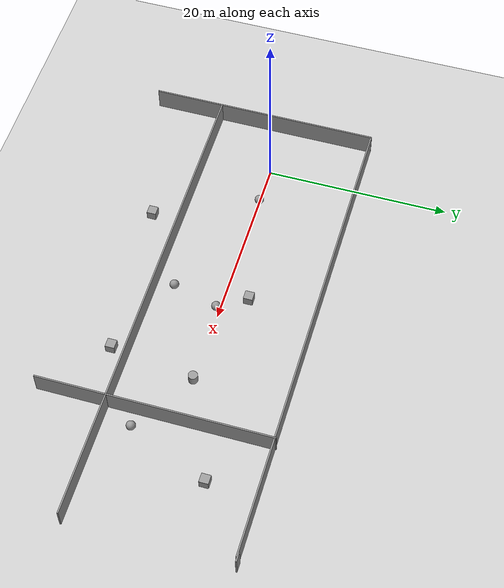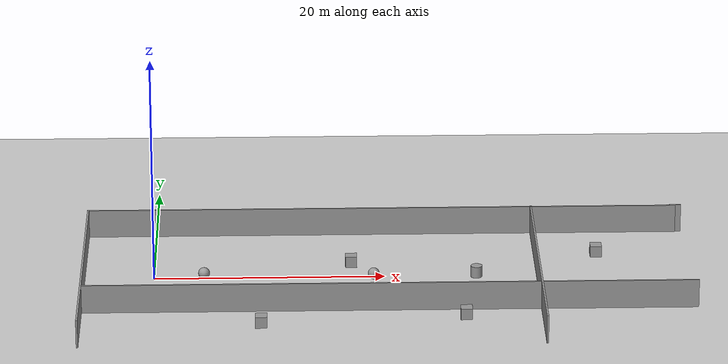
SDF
<sdf version="1.6">
 <world name="default">
  <light name="sun" type="directional">
   <pose>0 0 10 0 -0 0</pose>
   <diffuse>0.8 0.8 0.8 1</diffuse>
   <specular>0.2 0.2 0.2 1</specular>
   <attenuation>
    <range>1000</range>
    <constant>0.9</constant>
    <linear>0.01</linear>
    <quadratic>0.001</quadratic>
   </attenuation>
   <direction>-0.5 0.1 -0.9</direction>
  </light>
  <model name="ground_plane">
   <static>1</static>
   <link name="link">
    <collision name="collision">
     <geometry><plane><normal>0 0 1</normal><size>100 100</size></plane></geometry>
     <surface>
      <contact><collide_bitmask>65535</collide_bitmask></contact>
      <friction><ode><mu>100</mu><mu2>50</mu2></ode></friction>
     </surface>
    </collision>
    <visual name="visual">
     <cast_shadows>0</cast_shadows>
     <geometry><plane><normal>0 0 1</normal><size>100 100</size></plane></geometry>
     <material>
      <script><uri>file://media/materials/scripts/gazebo.material</uri><name>Gazebo/Grey</name></script>
     </material>
    </visual>
   </link>
  </model>
  <gravity>0 0 -9.8</gravity>
  <magnetic_field>6e-06 2.3e-05 -4.2e-05</magnetic_field>
  <atmosphere type="adiabatic"/>
  <physics name="default_physics" default="0" type="ode">
   <max_step_size>0.001</max_step_size>
   <real_time_factor>1</real_time_factor>
   <real_time_update_rate>1000</real_time_update_rate>
  </physics>
  <scene><ambient>0.4 0.4 0.4 1</ambient><background>0.7 0.7 0.7 1</background><shadows>1</shadows></scene>
  <spherical_coordinates>
   <surface_model>EARTH_WGS84</surface_model>
   <latitude_deg>0</latitude_deg>
   <longitude_deg>0</longitude_deg>
   <elevation>0</elevation>
   <heading_deg>0</heading_deg>
  </spherical_coordinates>
  <model name="unit_box">
   <pose>9.27103 -10.7382 0.499995 -1e-05 -0 -0</pose>
   <link name="link">
    <inertial>
     <mass>1</mass>
     <inertia>
      <ixx>0.166667</ixx>
      <ixy>0</ixy>
      <ixz>0</ixz>
      <iyy>0.166667</iyy>
      <iyz>0</iyz>
      <izz>0.166667</izz>
     </inertia>
    </inertial>
    <collision name="collision"><geometry><box><size>1 1 1</size></box></geometry></collision>
    <visual name="visual">
     <geometry><box><size>1 1 1</size></box></geometry>
     <material>
      <script><name>Gazebo/Grey</name><uri>file://media/materials/scripts/gazebo.material</uri></script>
     </material>
    </visual>
   </link>
  </model>
  <model name="unit_sphere">
   <pose>17.6211 -5.50796 0.5 0 -0 0</pose>
   <link name="link">
    <inertial>
     <mass>1</mass>
     <inertia><ixx>0.1</ixx><ixy>0</ixy><ixz>0</ixz><iyy>0.1</iyy><iyz>0</iyz><izz>0.1</izz></inertia>
    </inertial>
    <collision name="collision"><geometry><sphere><radius>0.5</radius></sphere></geometry></collision>
    <visual name="visual">
     <geometry><sphere><radius>0.5</radius></sphere></geometry>
     <material>
      <script><name>Gazebo/Grey</name><uri>file://media/materials/scripts/gazebo.material</uri></script>
     </material>
    </visual>
   </link>
  </model>
  <model name="unit_box_0">
   <pose>17.1012 2.58353 0.499995 -1e-05 -0 -0</pose>
   <link name="link">
    <inertial>
     <mass>1</mass>
     <inertia>
      <ixx>0.166667</ixx>
      <ixy>0</ixy>
      <ixz>0</ixz>
      <iyy>0.166667</iyy>
      <iyz>0</iyz>
      <izz>0.166667</izz>
     </inertia>
    </inertial>
    <collision name="collision"><geometry><box><size>1 1 1</size></box></geometry></collision>
    <visual name="visual">
     <geometry><box><size>1 1 1</size></box></geometry>
     <material>
      <script><name>Gazebo/Grey</name><uri>file://media/materials/scripts/gazebo.material</uri></script>
     </material>
    </visual>
   </link>
  </model>
  <model name="unit_box_1">
   <pose>26.6753 -9.35219 0.499995 0 1e-05 0</pose>
   <link name="link">
    <inertial>
     <mass>1</mass>
     <inertia>
      <ixx>0.166667</ixx>
      <ixy>0</ixy>
      <ixz>0</ixz>
      <iyy>0.166667</iyy>
      <iyz>0</iyz>
      <izz>0.166667</izz>
     </inertia>
    </inertial>
    <collision name="collision"><geometry><box><size>1 1 1</size></box></geometry></collision>
    <visual name="visual">
     <geometry><box><size>1 1 1</size></box></geometry>
     <material>
      <script><name>Gazebo/Grey</name><uri>file://media/materials/scripts/gazebo.material</uri></script>
     </material>
    </visual>
   </link>
  </model>
  <model name="unit_cylinder">
   <pose>27.9405 -0.11704 0.499998 3e-06 4e-06 -0</pose>
   <link name="link">
    <inertial>
     <mass>1</mass>
     <inertia><ixx>0.145833</ixx><ixy>0</ixy><ixz>0</ixz><iyy>0.145833</iyy><iyz>0</iyz><izz>0.125</izz></inertia>
    </inertial>
    <collision name="collision">
     <geometry><cylinder><radius>0.5</radius><length>1</length></cylinder></geometry>
    </collision>
    <visual name="visual">
     <geometry><cylinder><radius>0.5</radius><length>1</length></cylinder></geometry>
     <material>
      <script><name>Gazebo/Grey</name><uri>file://media/materials/scripts/gazebo.material</uri></script>
     </material>
    </visual>
   </link>
  </model>
  <model name="unit_sphere_0">
   <pose>34.8862 -4.37811 0.5 0 -0 0</pose>
   <link name="link">
    <inertial>
     <mass>1</mass>
     <inertia><ixx>0.1</ixx><ixy>0</ixy><ixz>0</ixz><iyy>0.1</iyy><iyz>0</iyz><izz>0.1</izz></inertia>
    </inertial>
    <collision name="collision"><geometry><sphere><radius>0.5</radius></sphere></geometry></collision>
    <visual name="visual">
     <geometry><sphere><radius>0.5</radius></sphere></geometry>
     <material>
      <script><name>Gazebo/Grey</name><uri>file://media/materials/scripts/gazebo.material</uri></script>
     </material>
    </visual>
   </link>
  </model>
  <model name="unit_box_2">
   <pose>38.6305 4.52883 0.499995 -1e-05 -0 -0</pose>
   <link name="link">
    <inertial>
     <mass>1</mass>
     <inertia>
      <ixx>0.166667</ixx>
      <ixy>0</ixy>
      <ixz>0</ixz>
      <iyy>0.166667</iyy>
      <iyz>0</iyz>
      <izz>0.166667</izz>
     </inertia>
    </inertial>
    <collision name="collision"><geometry><box><size>1 1 1</size></box></geometry></collision>
    <visual name="visual">
     <geometry><box><size>1 1 1</size></box></geometry>
     <material>
      <script><name>Gazebo/Grey</name><uri>file://media/materials/scripts/gazebo.material</uri></script>
     </material>
    </visual>
   </link>
  </model>
  <model name="unit_sphere_1">
   <pose>4.30811 -0.016172 0.5 0 -0 0</pose>
   <link name="link">
    <inertial>
     <mass>1</mass>
     <inertia><ixx>0.1</ixx><ixy>0</ixy><ixz>0</ixz><iyy>0.1</iyy><iyz>0</iyz><izz>0.1</izz></inertia>
    </inertial>
    <collision name="collision"><geometry><sphere><radius>0.5</radius></sphere></geometry></collision>
    <visual name="visual">
     <geometry><sphere><radius>0.5</radius></sphere></geometry>
     <material>
      <script><name>Gazebo/Grey</name><uri>file://media/materials/scripts/gazebo.material</uri></script>
     </material>
    </visual>
   </link>
  </model>
  <model name="unit_sphere_2">
   <pose>19.0068 -0.442211 0.5 0 -0 0</pose>
   <link name="link">
    <inertial>
     <mass>1</mass>
     <inertia><ixx>0.1</ixx><ixy>0</ixy><ixz>0</ixz><iyy>0.1</iyy><iyz>0</iyz><izz>0.1</izz></inertia>
    </inertial>
    <collision name="collision"><geometry><sphere><radius>0.5</radius></sphere></geometry></collision>
    <visual name="visual">
     <geometry><sphere><radius>0.5</radius></sphere></geometry>
     <material>
      <script><name>Gazebo/Grey</name><uri>file://media/materials/scripts/gazebo.material</uri></script>
     </material>
    </visual>
   </link>
  </model>
  <model name="world_two">
   <link name="Wall_10">
    <pose>13 0 0 0 -0 1.5708</pose>
    <inertial>
     <mass>1</mass>
     <inertia><ixx>1</ixx><ixy>0</ixy><ixz>0</ixz><iyy>1</iyy><iyz>0</iyz><izz>1</izz></inertia>
    </inertial>
    <visual name="Wall_10_Visual">
     <pose>0 0 1.25 0 -0 0</pose>
     <geometry><box><size>25.25 0.15 2.5</size></box></geometry>
     <material>
      <script><uri>file://media/materials/scripts/gazebo.material</uri><name>Gazebo/Grey</name></script>
      <ambient>1 1 1 1</ambient>
      <shader type="pixel"><normal_map>__default__</normal_map></shader>
      <diffuse>0.7 0.7 0.7 1</diffuse>
      <specular>0.01 0.01 0.01 1</specular>
      <emissive>0 0 0 1</emissive>
     </material>
     <meta><layer>0</layer></meta>
    </visual>
    <collision name="Wall_10_Collision">
     <pose>0 0 1.25 0 -0 0</pose>
     <geometry><box><size>25.25 0.15 2.5</size></box></geometry>
     <surface>
      <friction>
       <ode><mu>1</mu><mu2>1</mu2><fdir1>0 0 0</fdir1><slip1>0</slip1><slip2>0</slip2></ode>
       <torsional>
        <coefficient>1</coefficient>
        <patch_radius>0</patch_radius>
        <surface_radius>0</surface_radius>
        <use_patch_radius>1</use_patch_radius>
        <ode><slip>0</slip></ode>
       </torsional>
      </friction>
      <bounce><restitution_coefficient>0</restitution_coefficient><threshold>1e+06</threshold></bounce>
      <contact>
       <collide_without_contact>0</collide_without_contact>
       <collide_without_contact_bitmask>1</collide_without_contact_bitmask>
       <collide_bitmask>1</collide_bitmask>
       <ode>
        <soft_cfm>0</soft_cfm>
        <soft_erp>0.2</soft_erp>
        <kp>1e+13</kp>
        <kd>1</kd>
        <max_vel>0.01</max_vel>
        <min_depth>0</min_depth>
       </ode>
       <bullet>
        <split_impulse>1</split_impulse>
        <split_impulse_penetration_threshold>-0.01</split_impulse_penetration_threshold>
        <soft_cfm>0</soft_cfm>
        <soft_erp>0.2</soft_erp>
        <kp>1e+13</kp>
        <kd>1</kd>
       </bullet>
      </contact>
     </surface>
    </collision>
   </link>
   <link name="Wall_11">
    <pose>25.875 12.55 0 0 -0 3.14159</pose>
    <visual name="Wall_11_Visual">
     <pose>0 0 1.25 0 -0 0</pose>
     <geometry><box><size>1 0.15 2.5</size></box></geometry>
     <material>
      <script><uri>file://media/materials/scripts/gazebo.material</uri><name>Gazebo/Grey</name></script>
      <ambient>1 1 1 1</ambient>
      <shader type="pixel"/>
     </material>
     <meta><layer>0</layer></meta>
    </visual>
    <collision name="Wall_11_Collision">
     <pose>0 0 1.25 0 -0 0</pose>
     <geometry><box><size>1 0.15 2.5</size></box></geometry>
     <surface>
      <friction>
       <ode><mu>1</mu><mu2>1</mu2><fdir1>0 0 0</fdir1><slip1>0</slip1><slip2>0</slip2></ode>
       <torsional>
        <coefficient>1</coefficient>
        <patch_radius>0</patch_radius>
        <surface_radius>0</surface_radius>
        <use_patch_radius>1</use_patch_radius>
        <ode><slip>0</slip></ode>
       </torsional>
      </friction>
      <bounce><restitution_coefficient>0</restitution_coefficient><threshold>1e+06</threshold></bounce>
      <contact>
       <collide_without_contact>0</collide_without_contact>
       <collide_without_contact_bitmask>1</collide_without_contact_bitmask>
       <collide_bitmask>1</collide_bitmask>
       <ode>
        <soft_cfm>0</soft_cfm>
        <soft_erp>0.2</soft_erp>
        <kp>1e+13</kp>
        <kd>1</kd>
        <max_vel>0.01</max_vel>
        <min_depth>0</min_depth>
       </ode>
       <bullet>
        <split_impulse>1</split_impulse>
        <split_impulse_penetration_threshold>-0.01</split_impulse_penetration_threshold>
        <soft_cfm>0</soft_cfm>
        <soft_erp>0.2</soft_erp>
        <kp>1e+13</kp>
        <kd>1</kd>
       </bullet>
      </contact>
     </surface>
    </collision>
   </link>
   <link name="Wall_3">
    <pose>-26.3 -0.05 0 0 -0 1.5708</pose>
    <visual name="Wall_3_Visual">
     <pose>0 0 1.25 0 -0 0</pose>
     <geometry><box><size>25.15 0.15 2.5</size></box></geometry>
     <material>
      <script><uri>file://media/materials/scripts/gazebo.material</uri><name>Gazebo/Grey</name></script>
      <ambient>1 1 1 1</ambient>
      <shader type="pixel"/>
     </material>
     <meta><layer>0</layer></meta>
    </visual>
    <collision name="Wall_3_Collision">
     <pose>0 0 1.25 0 -0 0</pose>
     <geometry><box><size>25.15 0.15 2.5</size></box></geometry>
     <surface>
      <friction>
       <ode><mu>1</mu><mu2>1</mu2><fdir1>0 0 0</fdir1><slip1>0</slip1><slip2>0</slip2></ode>
       <torsional>
        <coefficient>1</coefficient>
        <patch_radius>0</patch_radius>
        <surface_radius>0</surface_radius>
        <use_patch_radius>1</use_patch_radius>
        <ode><slip>0</slip></ode>
       </torsional>
      </friction>
      <bounce><restitution_coefficient>0</restitution_coefficient><threshold>1e+06</threshold></bounce>
      <contact>
       <collide_without_contact>0</collide_without_contact>
       <collide_without_contact_bitmask>1</collide_without_contact_bitmask>
       <collide_bitmask>1</collide_bitmask>
       <ode>
        <soft_cfm>0</soft_cfm>
        <soft_erp>0.2</soft_erp>
        <kp>1e+13</kp>
        <kd>1</kd>
        <max_vel>0.01</max_vel>
        <min_depth>0</min_depth>
       </ode>
       <bullet>
        <split_impulse>1</split_impulse>
        <split_impulse_penetration_threshold>-0.01</split_impulse_penetration_threshold>
        <soft_cfm>0</soft_cfm>
        <soft_erp>0.2</soft_erp>
        <kp>1e+13</kp>
        <kd>1</kd>
       </bullet>
      </contact>
     </surface>
    </collision>
   </link>
   <link name="Wall_6">
    <pose>-0.25 12.45 0 0 -0 0</pose>
    <visual name="Wall_6_Visual">
     <pose>0 0 1.25 0 -0 0</pose>
     <geometry><box><size>52.25 0.15 2.5</size></box></geometry>
     <material>
      <script><uri>file://media/materials/scripts/gazebo.material</uri><name>Gazebo/Grey</name></script>
      <ambient>1 1 1 1</ambient>
      <shader type="pixel"/>
     </material>
     <meta><layer>0</layer></meta>
    </visual>
    <collision name="Wall_6_Collision">
     <pose>0 0 1.25 0 -0 0</pose>
     <geometry><box><size>52.25 0.15 2.5</size></box></geometry>
     <surface>
      <friction>
       <ode><mu>1</mu><mu2>1</mu2><fdir1>0 0 0</fdir1><slip1>0</slip1><slip2>0</slip2></ode>
       <torsional>
        <coefficient>1</coefficient>
        <patch_radius>0</patch_radius>
        <surface_radius>0</surface_radius>
        <use_patch_radius>1</use_patch_radius>
        <ode><slip>0</slip></ode>
       </torsional>
      </friction>
      <bounce><restitution_coefficient>0</restitution_coefficient><threshold>1e+06</threshold></bounce>
      <contact>
       <collide_without_contact>0</collide_without_contact>
       <collide_without_contact_bitmask>1</collide_without_contact_bitmask>
       <collide_bitmask>1</collide_bitmask>
       <ode>
        <soft_cfm>0</soft_cfm>
        <soft_erp>0.2</soft_erp>
        <kp>1e+13</kp>
        <kd>1</kd>
        <max_vel>0.01</max_vel>
        <min_depth>0</min_depth>
       </ode>
       <bullet>
        <split_impulse>1</split_impulse>
        <split_impulse_penetration_threshold>-0.01</split_impulse_penetration_threshold>
        <soft_cfm>0</soft_cfm>
        <soft_erp>0.2</soft_erp>
        <kp>1e+13</kp>
        <kd>1</kd>
       </bullet>
      </contact>
     </surface>
    </collision>
   </link>
   <link name="Wall_9">
    <pose>0 -5 0 0 -0 0</pose>
    <inertial>
     <mass>1</mass>
     <inertia><ixx>1</ixx><ixy>0</ixy><ixz>0</ixz><iyy>1</iyy><iyz>0</iyz><izz>1</izz></inertia>
    </inertial>
    <visual name="Wall_9_Visual">
     <pose>0 0 1.25 0 -0 0</pose>
     <geometry><box><size>52.75 0.15 2.5</size></box></geometry>
     <material>
      <script><uri>file://media/materials/scripts/gazebo.material</uri><name>Gazebo/Grey</name></script>
      <ambient>1 1 1 1</ambient>
      <shader type="pixel"><normal_map>__default__</normal_map></shader>
      <diffuse>0.7 0.7 0.7 1</diffuse>
      <specular>0.01 0.01 0.01 1</specular>
      <emissive>0 0 0 1</emissive>
     </material>
     <meta><layer>0</layer></meta>
    </visual>
    <collision name="Wall_9_Collision">
     <pose>0 0 1.25 0 -0 0</pose>
     <geometry><box><size>52.75 0.15 2.5</size></box></geometry>
     <surface>
      <friction>
       <ode><mu>1</mu><mu2>1</mu2><fdir1>0 0 0</fdir1><slip1>0</slip1><slip2>0</slip2></ode>
       <torsional>
        <coefficient>1</coefficient>
        <patch_radius>0</patch_radius>
        <surface_radius>0</surface_radius>
        <use_patch_radius>1</use_patch_radius>
        <ode><slip>0</slip></ode>
       </torsional>
      </friction>
      <bounce><restitution_coefficient>0</restitution_coefficient><threshold>1e+06</threshold></bounce>
      <contact>
       <collide_without_contact>0</collide_without_contact>
       <collide_without_contact_bitmask>1</collide_without_contact_bitmask>
       <collide_bitmask>1</collide_bitmask>
       <ode>
        <soft_cfm>0</soft_cfm>
        <soft_erp>0.2</soft_erp>
        <kp>1e+13</kp>
        <kd>1</kd>
        <max_vel>0.01</max_vel>
        <min_depth>0</min_depth>
       </ode>
       <bullet>
        <split_impulse>1</split_impulse>
        <split_impulse_penetration_threshold>-0.01</split_impulse_penetration_threshold>
        <soft_cfm>0</soft_cfm>
        <soft_erp>0.2</soft_erp>
        <kp>1e+13</kp>
        <kd>1</kd>
       </bullet>
      </contact>
     </surface>
    </collision>
   </link>
   <static>1</static>
   <pose>20.22 -2.45 0 0 -0 0</pose>
  </model>
 </world>
</sdf>
